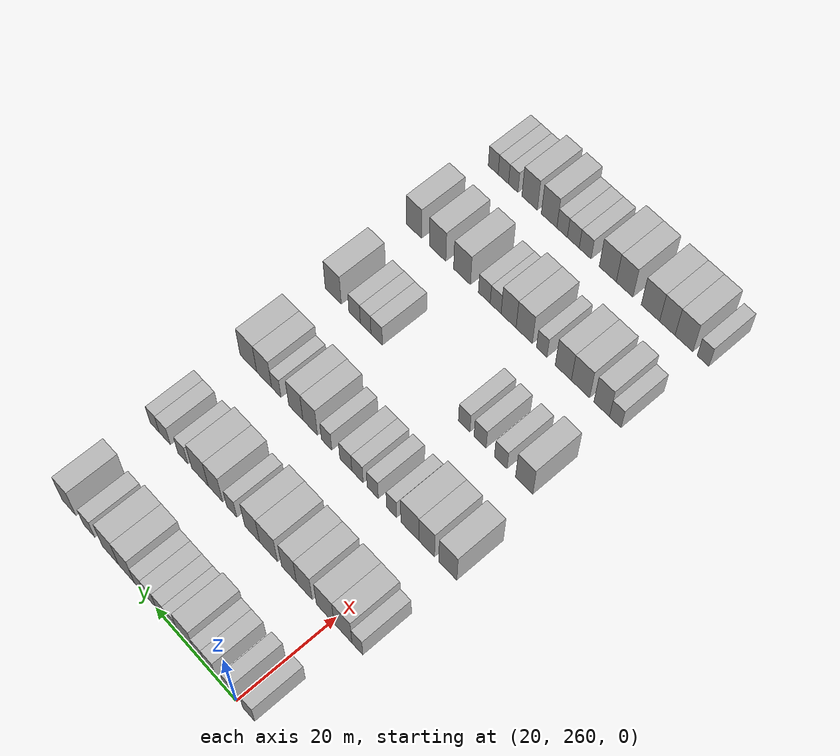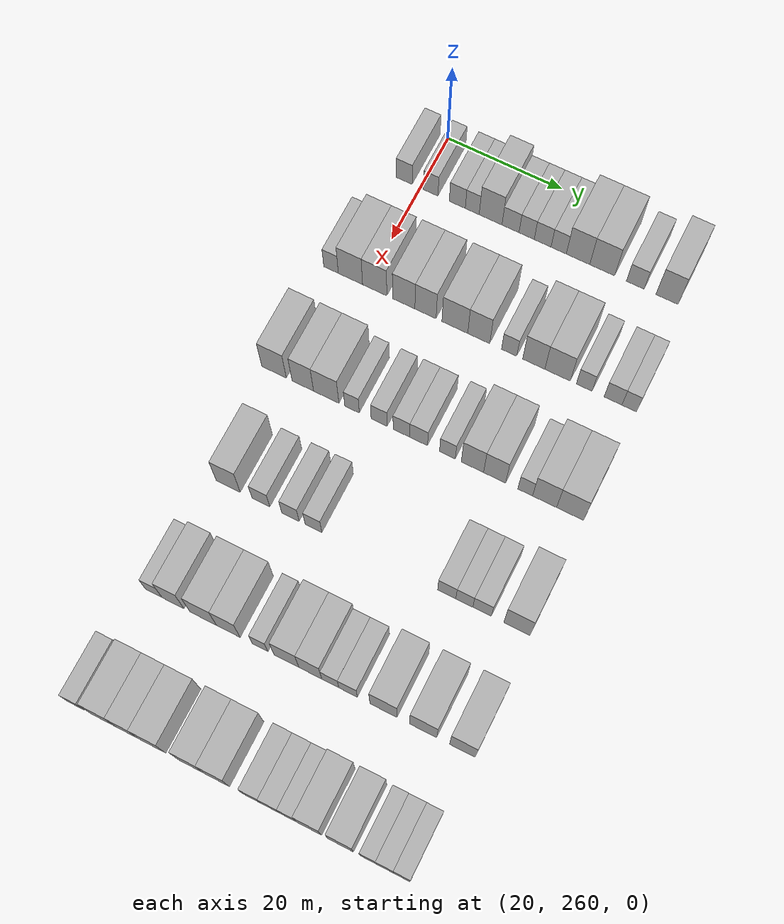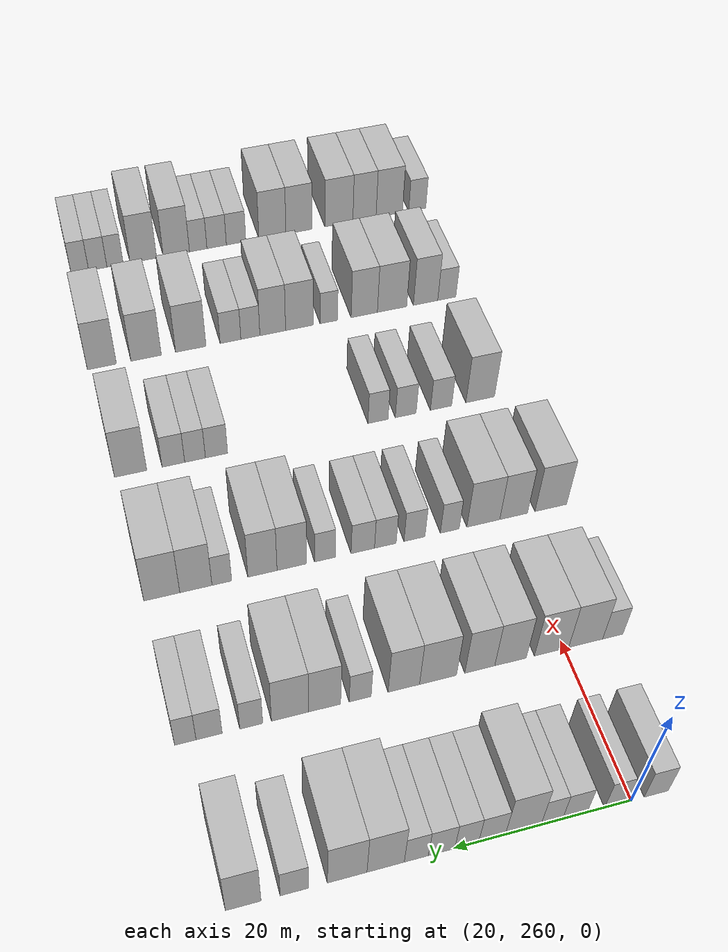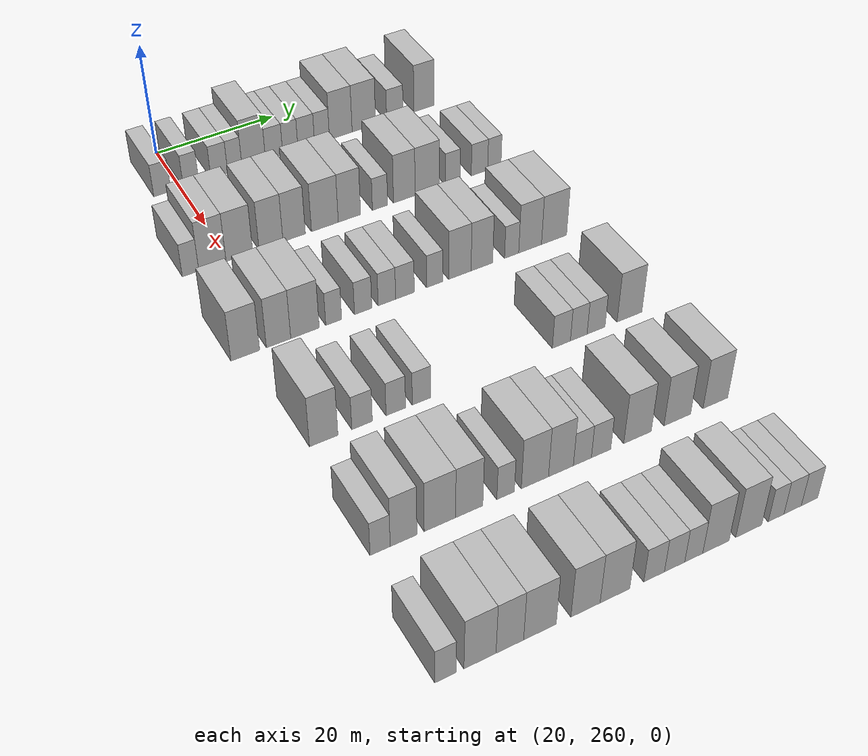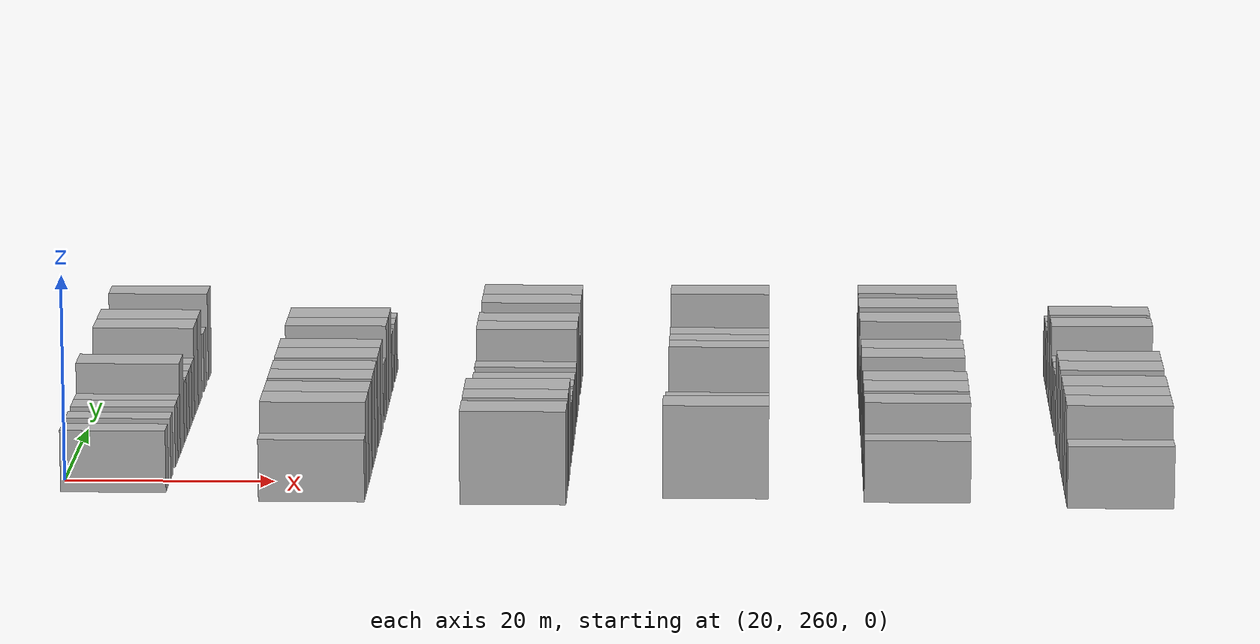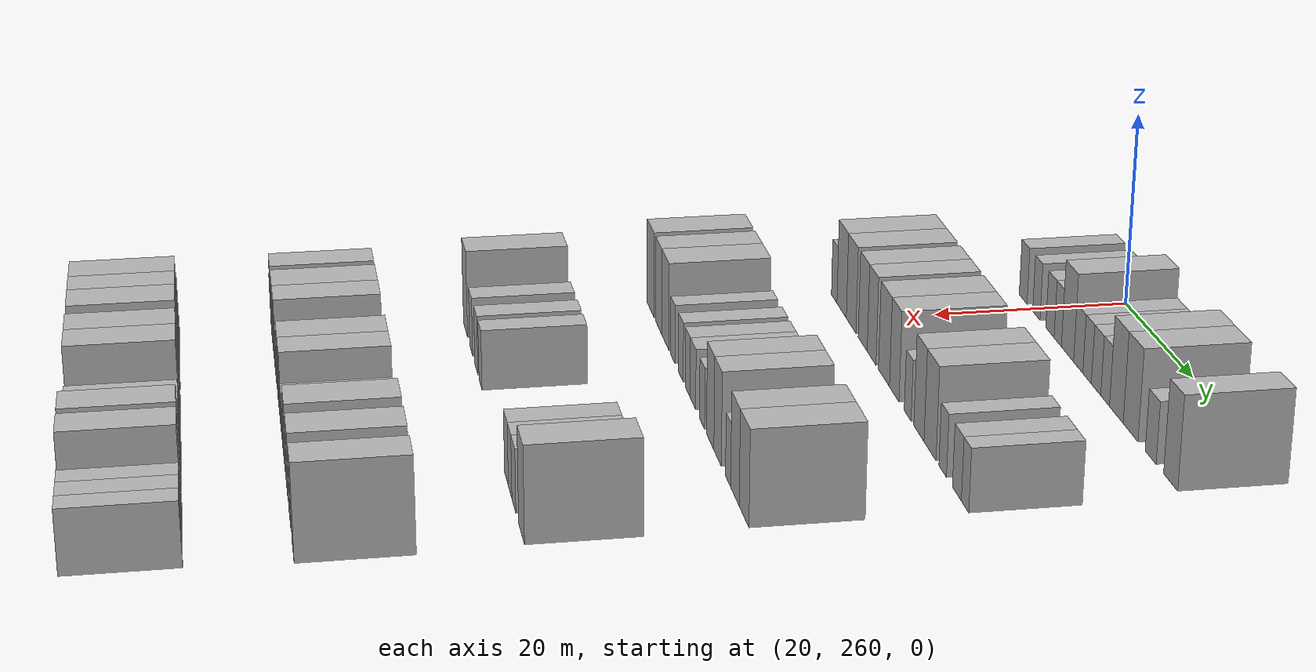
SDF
<sdf version="1.6">
 <world name="default">
  <model name="building_144">
   <static>1</static>
   <pose>25.0000 257.1010 0 0.000000 0.000000 0.000000</pose>
   <link name="link">
    <pose>0 0 3.00 0 0 0</pose>
    <collision name="collision"><geometry><box><size>10.0000 2.8048 6.0000</size></box></geometry></collision>
    <visual name="visual">
     <cast_shadows>0</cast_shadows>
     <geometry><box><size>10.0000 2.8048 6.0000</size></box></geometry>
     <material>
      <script>
       <uri>model://HANNAS_wall/materials/scripts</uri>
       <uri>model://HANNAS_wall/materials/textures</uri>
       <name>vrc/HANNAS_wall</name>
      </script>
     </material>
    </visual>
   </link>
  </model>
  <model name="building_145">
   <static>1</static>
   <pose>25.0000 261.7881 0 0.000000 0.000000 0.000000</pose>
   <link name="link">
    <pose>0 0 3.00 0 0 0</pose>
    <collision name="collision"><geometry><box><size>10.0000 2.5695 6.0000</size></box></geometry></collision>
    <visual name="visual">
     <cast_shadows>0</cast_shadows>
     <geometry><box><size>10.0000 2.5695 6.0000</size></box></geometry>
     <material>
      <script>
       <uri>model://HANNAS_wall/materials/scripts</uri>
       <uri>model://HANNAS_wall/materials/textures</uri>
       <name>vrc/HANNAS_wall</name>
      </script>
     </material>
    </visual>
   </link>
  </model>
  <model name="building_146">
   <static>1</static>
   <pose>25.0000 266.4781 0 0.000000 0.000000 0.000000</pose>
   <link name="link">
    <pose>0 0 3.00 0 0 0</pose>
    <collision name="collision"><geometry><box><size>10.0000 2.8106 6.0000</size></box></geometry></collision>
    <visual name="visual">
     <cast_shadows>0</cast_shadows>
     <geometry><box><size>10.0000 2.8106 6.0000</size></box></geometry>
     <material>
      <script>
       <uri>model://HANNAS_wall/materials/scripts</uri>
       <uri>model://HANNAS_wall/materials/textures</uri>
       <name>vrc/HANNAS_wall</name>
      </script>
     </material>
    </visual>
   </link>
  </model>
  <model name="building_147">
   <static>1</static>
   <pose>25.0000 269.1011 0 0.000000 0.000000 0.000000</pose>
   <link name="link">
    <pose>0 0 3.00 0 0 0</pose>
    <collision name="collision"><geometry><box><size>10.0000 2.4353 6.0000</size></box></geometry></collision>
    <visual name="visual">
     <cast_shadows>0</cast_shadows>
     <geometry><box><size>10.0000 2.4353 6.0000</size></box></geometry>
     <material>
      <script>
       <uri>model://HANNAS_wall/materials/scripts</uri>
       <uri>model://HANNAS_wall/materials/textures</uri>
       <name>vrc/HANNAS_wall</name>
      </script>
     </material>
    </visual>
   </link>
  </model>
  <model name="building_148">
   <static>1</static>
   <pose>25.0000 272.3155 0 0.000000 0.000000 0.000000</pose>
   <link name="link">
    <pose>0 0 4.50 0 0 0</pose>
    <collision name="collision"><geometry><box><size>10.0000 3.9936 9.0000</size></box></geometry></collision>
    <visual name="visual">
     <cast_shadows>0</cast_shadows>
     <geometry><box><size>10.0000 3.9936 9.0000</size></box></geometry>
     <material>
      <script>
       <uri>model://HANNAS_wall/materials/scripts</uri>
       <uri>model://HANNAS_wall/materials/textures</uri>
       <name>vrc/HANNAS_wall</name>
      </script>
     </material>
    </visual>
   </link>
  </model>
  <model name="building_149">
   <static>1</static>
   <pose>25.0000 275.7907 0 0.000000 0.000000 0.000000</pose>
   <link name="link">
    <pose>0 0 3.00 0 0 0</pose>
    <collision name="collision"><geometry><box><size>10.0000 2.9568 6.0000</size></box></geometry></collision>
    <visual name="visual">
     <cast_shadows>0</cast_shadows>
     <geometry><box><size>10.0000 2.9568 6.0000</size></box></geometry>
     <material>
      <script>
       <uri>model://HANNAS_wall/materials/scripts</uri>
       <uri>model://HANNAS_wall/materials/textures</uri>
       <name>vrc/HANNAS_wall</name>
      </script>
     </material>
    </visual>
   </link>
  </model>
  <model name="building_150">
   <static>1</static>
   <pose>25.0000 278.5906 0 0.000000 0.000000 0.000000</pose>
   <link name="link">
    <pose>0 0 3.00 0 0 0</pose>
    <collision name="collision"><geometry><box><size>10.0000 2.6431 6.0000</size></box></geometry></collision>
    <visual name="visual">
     <cast_shadows>0</cast_shadows>
     <geometry><box><size>10.0000 2.6431 6.0000</size></box></geometry>
     <material>
      <script>
       <uri>model://HANNAS_wall/materials/scripts</uri>
       <uri>model://HANNAS_wall/materials/textures</uri>
       <name>vrc/HANNAS_wall</name>
      </script>
     </material>
    </visual>
   </link>
  </model>
  <model name="building_151">
   <static>1</static>
   <pose>25.0000 281.3657 0 0.000000 0.000000 0.000000</pose>
   <link name="link">
    <pose>0 0 3.00 0 0 0</pose>
    <collision name="collision"><geometry><box><size>10.0000 2.9071 6.0000</size></box></geometry></collision>
    <visual name="visual">
     <cast_shadows>0</cast_shadows>
     <geometry><box><size>10.0000 2.9071 6.0000</size></box></geometry>
     <material>
      <script>
       <uri>model://HANNAS_wall/materials/scripts</uri>
       <uri>model://HANNAS_wall/materials/textures</uri>
       <name>vrc/HANNAS_wall</name>
      </script>
     </material>
    </visual>
   </link>
  </model>
  <model name="building_152">
   <static>1</static>
   <pose>25.0000 284.1300 0 0.000000 0.000000 0.000000</pose>
   <link name="link">
    <pose>0 0 3.00 0 0 0</pose>
    <collision name="collision"><geometry><box><size>10.0000 2.6216 6.0000</size></box></geometry></collision>
    <visual name="visual">
     <cast_shadows>0</cast_shadows>
     <geometry><box><size>10.0000 2.6216 6.0000</size></box></geometry>
     <material>
      <script>
       <uri>model://HANNAS_wall/materials/scripts</uri>
       <uri>model://HANNAS_wall/materials/textures</uri>
       <name>vrc/HANNAS_wall</name>
      </script>
     </material>
    </visual>
   </link>
  </model>
  <model name="building_153">
   <static>1</static>
   <pose>25.0000 287.4581 0 0.000000 0.000000 0.000000</pose>
   <link name="link">
    <pose>0 0 4.50 0 0 0</pose>
    <collision name="collision"><geometry><box><size>10.0000 4.0344 9.0000</size></box></geometry></collision>
    <visual name="visual">
     <cast_shadows>0</cast_shadows>
     <geometry><box><size>10.0000 4.0344 9.0000</size></box></geometry>
     <material>
      <script>
       <uri>model://HANNAS_wall/materials/scripts</uri>
       <uri>model://HANNAS_wall/materials/textures</uri>
       <name>vrc/HANNAS_wall</name>
      </script>
     </material>
    </visual>
   </link>
  </model>
  <model name="building_154">
   <static>1</static>
   <pose>25.0000 291.5958 0 0.000000 0.000000 0.000000</pose>
   <link name="link">
    <pose>0 0 4.50 0 0 0</pose>
    <collision name="collision"><geometry><box><size>10.0000 4.2411 9.0000</size></box></geometry></collision>
    <visual name="visual">
     <cast_shadows>0</cast_shadows>
     <geometry><box><size>10.0000 4.2411 9.0000</size></box></geometry>
     <material>
      <script>
       <uri>model://HANNAS_wall/materials/scripts</uri>
       <uri>model://HANNAS_wall/materials/textures</uri>
       <name>vrc/HANNAS_wall</name>
      </script>
     </material>
    </visual>
   </link>
  </model>
  <model name="building_155">
   <static>1</static>
   <pose>25.0000 297.2146 0 0.000000 0.000000 0.000000</pose>
   <link name="link">
    <pose>0 0 3.00 0 0 0</pose>
    <collision name="collision"><geometry><box><size>10.0000 2.9964 6.0000</size></box></geometry></collision>
    <visual name="visual">
     <cast_shadows>0</cast_shadows>
     <geometry><box><size>10.0000 2.9964 6.0000</size></box></geometry>
     <material>
      <script>
       <uri>model://HANNAS_wall/materials/scripts</uri>
       <uri>model://HANNAS_wall/materials/textures</uri>
       <name>vrc/HANNAS_wall</name>
      </script>
     </material>
    </visual>
   </link>
  </model>
  <model name="building_156">
   <static>1</static>
   <pose>25.0000 302.5729 0 0.000000 0.000000 0.000000</pose>
   <link name="link">
    <pose>0 0 4.50 0 0 0</pose>
    <collision name="collision"><geometry><box><size>10.0000 3.7202 9.0000</size></box></geometry></collision>
    <visual name="visual">
     <cast_shadows>0</cast_shadows>
     <geometry><box><size>10.0000 3.7202 9.0000</size></box></geometry>
     <material>
      <script>
       <uri>model://HANNAS_wall/materials/scripts</uri>
       <uri>model://HANNAS_wall/materials/textures</uri>
       <name>vrc/HANNAS_wall</name>
      </script>
     </material>
    </visual>
   </link>
  </model>
  <model name="building_307">
   <static>1</static>
   <pose>44.0000 253.9449 0 0.000000 0.000000 0.000000</pose>
   <link name="link">
    <pose>0 0 3.00 0 0 0</pose>
    <collision name="collision"><geometry><box><size>10.0000 2.5527 6.0000</size></box></geometry></collision>
    <visual name="visual">
     <cast_shadows>0</cast_shadows>
     <geometry><box><size>10.0000 2.5527 6.0000</size></box></geometry>
     <material>
      <script>
       <uri>model://HANNAS_wall/materials/scripts</uri>
       <uri>model://HANNAS_wall/materials/textures</uri>
       <name>vrc/HANNAS_wall</name>
      </script>
     </material>
    </visual>
   </link>
  </model>
  <model name="building_308">
   <static>1</static>
   <pose>44.0000 257.3402 0 0.000000 0.000000 0.000000</pose>
   <link name="link">
    <pose>0 0 4.50 0 0 0</pose>
    <collision name="collision"><geometry><box><size>10.0000 4.2379 9.0000</size></box></geometry></collision>
    <visual name="visual">
     <cast_shadows>0</cast_shadows>
     <geometry><box><size>10.0000 4.2379 9.0000</size></box></geometry>
     <material>
      <script>
       <uri>model://HANNAS_wall/materials/scripts</uri>
       <uri>model://HANNAS_wall/materials/textures</uri>
       <name>vrc/HANNAS_wall</name>
      </script>
     </material>
    </visual>
   </link>
  </model>
  <model name="building_309">
   <static>1</static>
   <pose>44.0000 261.5734 0 0.000000 0.000000 0.000000</pose>
   <link name="link">
    <pose>0 0 4.50 0 0 0</pose>
    <collision name="collision"><geometry><box><size>10.0000 4.2284 9.0000</size></box></geometry></collision>
    <visual name="visual">
     <cast_shadows>0</cast_shadows>
     <geometry><box><size>10.0000 4.2284 9.0000</size></box></geometry>
     <material>
      <script>
       <uri>model://HANNAS_wall/materials/scripts</uri>
       <uri>model://HANNAS_wall/materials/textures</uri>
       <name>vrc/HANNAS_wall</name>
      </script>
     </material>
    </visual>
   </link>
  </model>
  <model name="building_310">
   <static>1</static>
   <pose>44.0000 266.6108 0 0.000000 0.000000 0.000000</pose>
   <link name="link">
    <pose>0 0 4.50 0 0 0</pose>
    <collision name="collision"><geometry><box><size>10.0000 3.8464 9.0000</size></box></geometry></collision>
    <visual name="visual">
     <cast_shadows>0</cast_shadows>
     <geometry><box><size>10.0000 3.8464 9.0000</size></box></geometry>
     <material>
      <script>
       <uri>model://HANNAS_wall/materials/scripts</uri>
       <uri>model://HANNAS_wall/materials/textures</uri>
       <name>vrc/HANNAS_wall</name>
      </script>
     </material>
    </visual>
   </link>
  </model>
  <model name="building_311">
   <static>1</static>
   <pose>44.0000 270.3527 0 0.000000 0.000000 0.000000</pose>
   <link name="link">
    <pose>0 0 4.50 0 0 0</pose>
    <collision name="collision"><geometry><box><size>10.0000 3.6373 9.0000</size></box></geometry></collision>
    <visual name="visual">
     <cast_shadows>0</cast_shadows>
     <geometry><box><size>10.0000 3.6373 9.0000</size></box></geometry>
     <material>
      <script>
       <uri>model://HANNAS_wall/materials/scripts</uri>
       <uri>model://HANNAS_wall/materials/textures</uri>
       <name>vrc/HANNAS_wall</name>
      </script>
     </material>
    </visual>
   </link>
  </model>
  <model name="building_312">
   <static>1</static>
   <pose>44.0000 275.3841 0 0.000000 0.000000 0.000000</pose>
   <link name="link">
    <pose>0 0 4.50 0 0 0</pose>
    <collision name="collision"><geometry><box><size>10.0000 4.4255 9.0000</size></box></geometry></collision>
    <visual name="visual">
     <cast_shadows>0</cast_shadows>
     <geometry><box><size>10.0000 4.4255 9.0000</size></box></geometry>
     <material>
      <script>
       <uri>model://HANNAS_wall/materials/scripts</uri>
       <uri>model://HANNAS_wall/materials/textures</uri>
       <name>vrc/HANNAS_wall</name>
      </script>
     </material>
    </visual>
   </link>
  </model>
  <model name="building_313">
   <static>1</static>
   <pose>44.0000 279.4650 0 0.000000 0.000000 0.000000</pose>
   <link name="link">
    <pose>0 0 4.50 0 0 0</pose>
    <collision name="collision"><geometry><box><size>10.0000 3.7363 9.0000</size></box></geometry></collision>
    <visual name="visual">
     <cast_shadows>0</cast_shadows>
     <geometry><box><size>10.0000 3.7363 9.0000</size></box></geometry>
     <material>
      <script>
       <uri>model://HANNAS_wall/materials/scripts</uri>
       <uri>model://HANNAS_wall/materials/textures</uri>
       <name>vrc/HANNAS_wall</name>
      </script>
     </material>
    </visual>
   </link>
  </model>
  <model name="building_314">
   <static>1</static>
   <pose>44.0000 284.6228 0 0.000000 0.000000 0.000000</pose>
   <link name="link">
    <pose>0 0 3.00 0 0 0</pose>
    <collision name="collision"><geometry><box><size>10.0000 2.5793 6.0000</size></box></geometry></collision>
    <visual name="visual">
     <cast_shadows>0</cast_shadows>
     <geometry><box><size>10.0000 2.5793 6.0000</size></box></geometry>
     <material>
      <script>
       <uri>model://HANNAS_wall/materials/scripts</uri>
       <uri>model://HANNAS_wall/materials/textures</uri>
       <name>vrc/HANNAS_wall</name>
      </script>
     </material>
    </visual>
   </link>
  </model>
  <model name="building_315">
   <static>1</static>
   <pose>44.0000 288.7762 0 0.000000 0.000000 0.000000</pose>
   <link name="link">
    <pose>0 0 4.50 0 0 0</pose>
    <collision name="collision"><geometry><box><size>10.0000 3.7275 9.0000</size></box></geometry></collision>
    <visual name="visual">
     <cast_shadows>0</cast_shadows>
     <geometry><box><size>10.0000 3.7275 9.0000</size></box></geometry>
     <material>
      <script>
       <uri>model://HANNAS_wall/materials/scripts</uri>
       <uri>model://HANNAS_wall/materials/textures</uri>
       <name>vrc/HANNAS_wall</name>
      </script>
     </material>
    </visual>
   </link>
  </model>
  <model name="building_316">
   <static>1</static>
   <pose>44.0000 292.7743 0 0.000000 0.000000 0.000000</pose>
   <link name="link">
    <pose>0 0 4.50 0 0 0</pose>
    <collision name="collision"><geometry><box><size>10.0000 4.2688 9.0000</size></box></geometry></collision>
    <visual name="visual">
     <cast_shadows>0</cast_shadows>
     <geometry><box><size>10.0000 4.2688 9.0000</size></box></geometry>
     <material>
      <script>
       <uri>model://HANNAS_wall/materials/scripts</uri>
       <uri>model://HANNAS_wall/materials/textures</uri>
       <name>vrc/HANNAS_wall</name>
      </script>
     </material>
    </visual>
   </link>
  </model>
  <model name="building_317">
   <static>1</static>
   <pose>44.0000 297.2145 0 0.000000 0.000000 0.000000</pose>
   <link name="link">
    <pose>0 0 3.00 0 0 0</pose>
    <collision name="collision"><geometry><box><size>10.0000 2.6117 6.0000</size></box></geometry></collision>
    <visual name="visual">
     <cast_shadows>0</cast_shadows>
     <geometry><box><size>10.0000 2.6117 6.0000</size></box></geometry>
     <material>
      <script>
       <uri>model://HANNAS_wall/materials/scripts</uri>
       <uri>model://HANNAS_wall/materials/textures</uri>
       <name>vrc/HANNAS_wall</name>
      </script>
     </material>
    </visual>
   </link>
  </model>
  <model name="building_318">
   <static>1</static>
   <pose>44.0000 301.9924 0 0.000000 0.000000 0.000000</pose>
   <link name="link">
    <pose>0 0 3.00 0 0 0</pose>
    <collision name="collision"><geometry><box><size>10.0000 2.9440 6.0000</size></box></geometry></collision>
    <visual name="visual">
     <cast_shadows>0</cast_shadows>
     <geometry><box><size>10.0000 2.9440 6.0000</size></box></geometry>
     <material>
      <script>
       <uri>model://HANNAS_wall/materials/scripts</uri>
       <uri>model://HANNAS_wall/materials/textures</uri>
       <name>vrc/HANNAS_wall</name>
      </script>
     </material>
    </visual>
   </link>
  </model>
  <model name="building_319">
   <static>1</static>
   <pose>44.0000 304.6697 0 0.000000 0.000000 0.000000</pose>
   <link name="link">
    <pose>0 0 3.00 0 0 0</pose>
    <collision name="collision"><geometry><box><size>10.0000 2.4106 6.0000</size></box></geometry></collision>
    <visual name="visual">
     <cast_shadows>0</cast_shadows>
     <geometry><box><size>10.0000 2.4106 6.0000</size></box></geometry>
     <material>
      <script>
       <uri>model://HANNAS_wall/materials/scripts</uri>
       <uri>model://HANNAS_wall/materials/textures</uri>
       <name>vrc/HANNAS_wall</name>
      </script>
     </material>
    </visual>
   </link>
  </model>
  <model name="building_479">
   <static>1</static>
   <pose>63.0000 254.1440 0 0.000000 0.000000 0.000000</pose>
   <link name="link">
    <pose>0 0 4.50 0 0 0</pose>
    <collision name="collision"><geometry><box><size>10.0000 4.2396 9.0000</size></box></geometry></collision>
    <visual name="visual">
     <cast_shadows>0</cast_shadows>
     <geometry><box><size>10.0000 4.2396 9.0000</size></box></geometry>
     <material>
      <script>
       <uri>model://HANNAS_wall/materials/scripts</uri>
       <uri>model://HANNAS_wall/materials/textures</uri>
       <name>vrc/HANNAS_wall</name>
      </script>
     </material>
    </visual>
   </link>
  </model>
  <model name="building_480">
   <static>1</static>
   <pose>63.0000 259.0972 0 0.000000 0.000000 0.000000</pose>
   <link name="link">
    <pose>0 0 4.50 0 0 0</pose>
    <collision name="collision"><geometry><box><size>10.0000 3.6668 9.0000</size></box></geometry></collision>
    <visual name="visual">
     <cast_shadows>0</cast_shadows>
     <geometry><box><size>10.0000 3.6668 9.0000</size></box></geometry>
     <material>
      <script>
       <uri>model://HANNAS_wall/materials/scripts</uri>
       <uri>model://HANNAS_wall/materials/textures</uri>
       <name>vrc/HANNAS_wall</name>
      </script>
     </material>
    </visual>
   </link>
  </model>
  <model name="building_481">
   <static>1</static>
   <pose>63.0000 263.0956 0 0.000000 0.000000 0.000000</pose>
   <link name="link">
    <pose>0 0 4.50 0 0 0</pose>
    <collision name="collision"><geometry><box><size>10.0000 4.3301 9.0000</size></box></geometry></collision>
    <visual name="visual">
     <cast_shadows>0</cast_shadows>
     <geometry><box><size>10.0000 4.3301 9.0000</size></box></geometry>
     <material>
      <script>
       <uri>model://HANNAS_wall/materials/scripts</uri>
       <uri>model://HANNAS_wall/materials/textures</uri>
       <name>vrc/HANNAS_wall</name>
      </script>
     </material>
    </visual>
   </link>
  </model>
  <model name="building_482">
   <static>1</static>
   <pose>63.0000 267.4902 0 0.000000 0.000000 0.000000</pose>
   <link name="link">
    <pose>0 0 3.00 0 0 0</pose>
    <collision name="collision"><geometry><box><size>10.0000 2.4590 6.0000</size></box></geometry></collision>
    <visual name="visual">
     <cast_shadows>0</cast_shadows>
     <geometry><box><size>10.0000 2.4590 6.0000</size></box></geometry>
     <material>
      <script>
       <uri>model://HANNAS_wall/materials/scripts</uri>
       <uri>model://HANNAS_wall/materials/textures</uri>
       <name>vrc/HANNAS_wall</name>
      </script>
     </material>
    </visual>
   </link>
  </model>
  <model name="building_483">
   <static>1</static>
   <pose>63.0000 272.0754 0 0.000000 0.000000 0.000000</pose>
   <link name="link">
    <pose>0 0 3.00 0 0 0</pose>
    <collision name="collision"><geometry><box><size>10.0000 2.7114 6.0000</size></box></geometry></collision>
    <visual name="visual">
     <cast_shadows>0</cast_shadows>
     <geometry><box><size>10.0000 2.7114 6.0000</size></box></geometry>
     <material>
      <script>
       <uri>model://HANNAS_wall/materials/scripts</uri>
       <uri>model://HANNAS_wall/materials/textures</uri>
       <name>vrc/HANNAS_wall</name>
      </script>
     </material>
    </visual>
   </link>
  </model>
  <model name="building_484">
   <static>1</static>
   <pose>63.0000 275.8181 0 0.000000 0.000000 0.000000</pose>
   <link name="link">
    <pose>0 0 3.00 0 0 0</pose>
    <collision name="collision"><geometry><box><size>10.0000 2.7741 6.0000</size></box></geometry></collision>
    <visual name="visual">
     <cast_shadows>0</cast_shadows>
     <geometry><box><size>10.0000 2.7741 6.0000</size></box></geometry>
     <material>
      <script>
       <uri>model://HANNAS_wall/materials/scripts</uri>
       <uri>model://HANNAS_wall/materials/textures</uri>
       <name>vrc/HANNAS_wall</name>
      </script>
     </material>
    </visual>
   </link>
  </model>
  <model name="building_485">
   <static>1</static>
   <pose>63.0000 278.6989 0 0.000000 0.000000 0.000000</pose>
   <link name="link">
    <pose>0 0 3.00 0 0 0</pose>
    <collision name="collision"><geometry><box><size>10.0000 2.9874 6.0000</size></box></geometry></collision>
    <visual name="visual">
     <cast_shadows>0</cast_shadows>
     <geometry><box><size>10.0000 2.9874 6.0000</size></box></geometry>
     <material>
      <script>
       <uri>model://HANNAS_wall/materials/scripts</uri>
       <uri>model://HANNAS_wall/materials/textures</uri>
       <name>vrc/HANNAS_wall</name>
      </script>
     </material>
    </visual>
   </link>
  </model>
  <model name="building_486">
   <static>1</static>
   <pose>63.0000 283.4981 0 0.000000 0.000000 0.000000</pose>
   <link name="link">
    <pose>0 0 3.00 0 0 0</pose>
    <collision name="collision"><geometry><box><size>10.0000 2.6109 6.0000</size></box></geometry></collision>
    <visual name="visual">
     <cast_shadows>0</cast_shadows>
     <geometry><box><size>10.0000 2.6109 6.0000</size></box></geometry>
     <material>
      <script>
       <uri>model://HANNAS_wall/materials/scripts</uri>
       <uri>model://HANNAS_wall/materials/textures</uri>
       <name>vrc/HANNAS_wall</name>
      </script>
     </material>
    </visual>
   </link>
  </model>
  <model name="building_487">
   <static>1</static>
   <pose>63.0000 287.6475 0 0.000000 0.000000 0.000000</pose>
   <link name="link">
    <pose>0 0 4.50 0 0 0</pose>
    <collision name="collision"><geometry><box><size>10.0000 3.6880 9.0000</size></box></geometry></collision>
    <visual name="visual">
     <cast_shadows>0</cast_shadows>
     <geometry><box><size>10.0000 3.6880 9.0000</size></box></geometry>
     <material>
      <script>
       <uri>model://HANNAS_wall/materials/scripts</uri>
       <uri>model://HANNAS_wall/materials/textures</uri>
       <name>vrc/HANNAS_wall</name>
      </script>
     </material>
    </visual>
   </link>
  </model>
  <model name="building_488">
   <static>1</static>
   <pose>63.0000 291.3024 0 0.000000 0.000000 0.000000</pose>
   <link name="link">
    <pose>0 0 4.50 0 0 0</pose>
    <collision name="collision"><geometry><box><size>10.0000 3.6217 9.0000</size></box></geometry></collision>
    <visual name="visual">
     <cast_shadows>0</cast_shadows>
     <geometry><box><size>10.0000 3.6217 9.0000</size></box></geometry>
     <material>
      <script>
       <uri>model://HANNAS_wall/materials/scripts</uri>
       <uri>model://HANNAS_wall/materials/textures</uri>
       <name>vrc/HANNAS_wall</name>
      </script>
     </material>
    </visual>
   </link>
  </model>
  <model name="building_489">
   <static>1</static>
   <pose>63.0000 296.3195 0 0.000000 0.000000 0.000000</pose>
   <link name="link">
    <pose>0 0 3.00 0 0 0</pose>
    <collision name="collision"><geometry><box><size>10.0000 2.4126 6.0000</size></box></geometry></collision>
    <visual name="visual">
     <cast_shadows>0</cast_shadows>
     <geometry><box><size>10.0000 2.4126 6.0000</size></box></geometry>
     <material>
      <script>
       <uri>model://HANNAS_wall/materials/scripts</uri>
       <uri>model://HANNAS_wall/materials/textures</uri>
       <name>vrc/HANNAS_wall</name>
      </script>
     </material>
    </visual>
   </link>
  </model>
  <model name="building_490">
   <static>1</static>
   <pose>63.0000 299.4862 0 0.000000 0.000000 0.000000</pose>
   <link name="link">
    <pose>0 0 4.50 0 0 0</pose>
    <collision name="collision"><geometry><box><size>10.0000 3.9207 9.0000</size></box></geometry></collision>
    <visual name="visual">
     <cast_shadows>0</cast_shadows>
     <geometry><box><size>10.0000 3.9207 9.0000</size></box></geometry>
     <material>
      <script>
       <uri>model://HANNAS_wall/materials/scripts</uri>
       <uri>model://HANNAS_wall/materials/textures</uri>
       <name>vrc/HANNAS_wall</name>
      </script>
     </material>
    </visual>
   </link>
  </model>
  <model name="building_491">
   <static>1</static>
   <pose>63.0000 303.6289 0 0.000000 0.000000 0.000000</pose>
   <link name="link">
    <pose>0 0 4.50 0 0 0</pose>
    <collision name="collision"><geometry><box><size>10.0000 4.3647 9.0000</size></box></geometry></collision>
    <visual name="visual">
     <cast_shadows>0</cast_shadows>
     <geometry><box><size>10.0000 4.3647 9.0000</size></box></geometry>
     <material>
      <script>
       <uri>model://HANNAS_wall/materials/scripts</uri>
       <uri>model://HANNAS_wall/materials/textures</uri>
       <name>vrc/HANNAS_wall</name>
      </script>
     </material>
    </visual>
   </link>
  </model>
  <model name="building_656">
   <static>1</static>
   <pose>82.0000 256.7174 0 0.000000 0.000000 0.000000</pose>
   <link name="link">
    <pose>0 0 4.50 0 0 0</pose>
    <collision name="collision"><geometry><box><size>10.0000 4.0508 9.0000</size></box></geometry></collision>
    <visual name="visual">
     <cast_shadows>0</cast_shadows>
     <geometry><box><size>10.0000 4.0508 9.0000</size></box></geometry>
     <material>
      <script>
       <uri>model://HANNAS_wall/materials/scripts</uri>
       <uri>model://HANNAS_wall/materials/textures</uri>
       <name>vrc/HANNAS_wall</name>
      </script>
     </material>
    </visual>
   </link>
  </model>
  <model name="building_657">
   <static>1</static>
   <pose>82.0000 262.2316 0 0.000000 0.000000 0.000000</pose>
   <link name="link">
    <pose>0 0 3.00 0 0 0</pose>
    <collision name="collision"><geometry><box><size>10.0000 2.9776 6.0000</size></box></geometry></collision>
    <visual name="visual">
     <cast_shadows>0</cast_shadows>
     <geometry><box><size>10.0000 2.9776 6.0000</size></box></geometry>
     <material>
      <script>
       <uri>model://HANNAS_wall/materials/scripts</uri>
       <uri>model://HANNAS_wall/materials/textures</uri>
       <name>vrc/HANNAS_wall</name>
      </script>
     </material>
    </visual>
   </link>
  </model>
  <model name="building_658">
   <static>1</static>
   <pose>82.0000 267.1630 0 0.000000 0.000000 0.000000</pose>
   <link name="link">
    <pose>0 0 3.00 0 0 0</pose>
    <collision name="collision"><geometry><box><size>10.0000 2.8853 6.0000</size></box></geometry></collision>
    <visual name="visual">
     <cast_shadows>0</cast_shadows>
     <geometry><box><size>10.0000 2.8853 6.0000</size></box></geometry>
     <material>
      <script>
       <uri>model://HANNAS_wall/materials/scripts</uri>
       <uri>model://HANNAS_wall/materials/textures</uri>
       <name>vrc/HANNAS_wall</name>
      </script>
     </material>
    </visual>
   </link>
  </model>
  <model name="building_659">
   <static>1</static>
   <pose>82.0000 270.9936 0 0.000000 0.000000 0.000000</pose>
   <link name="link">
    <pose>0 0 3.00 0 0 0</pose>
    <collision name="collision"><geometry><box><size>10.0000 2.7759 6.0000</size></box></geometry></collision>
    <visual name="visual">
     <cast_shadows>0</cast_shadows>
     <geometry><box><size>10.0000 2.7759 6.0000</size></box></geometry>
     <material>
      <script>
       <uri>model://HANNAS_wall/materials/scripts</uri>
       <uri>model://HANNAS_wall/materials/textures</uri>
       <name>vrc/HANNAS_wall</name>
      </script>
     </material>
    </visual>
   </link>
  </model>
  <model name="building_660">
   <static>1</static>
   <pose>82.0000 292.7752 0 0.000000 0.000000 0.000000</pose>
   <link name="link">
    <pose>0 0 3.00 0 0 0</pose>
    <collision name="collision"><geometry><box><size>10.0000 2.9291 6.0000</size></box></geometry></collision>
    <visual name="visual">
     <cast_shadows>0</cast_shadows>
     <geometry><box><size>10.0000 2.9291 6.0000</size></box></geometry>
     <material>
      <script>
       <uri>model://HANNAS_wall/materials/scripts</uri>
       <uri>model://HANNAS_wall/materials/textures</uri>
       <name>vrc/HANNAS_wall</name>
      </script>
     </material>
    </visual>
   </link>
  </model>
  <model name="building_661">
   <static>1</static>
   <pose>82.0000 295.6012 0 0.000000 0.000000 0.000000</pose>
   <link name="link">
    <pose>0 0 3.00 0 0 0</pose>
    <collision name="collision"><geometry><box><size>10.0000 2.7230 6.0000</size></box></geometry></collision>
    <visual name="visual">
     <cast_shadows>0</cast_shadows>
     <geometry><box><size>10.0000 2.7230 6.0000</size></box></geometry>
     <material>
      <script>
       <uri>model://HANNAS_wall/materials/scripts</uri>
       <uri>model://HANNAS_wall/materials/textures</uri>
       <name>vrc/HANNAS_wall</name>
      </script>
     </material>
    </visual>
   </link>
  </model>
  <model name="building_662">
   <static>1</static>
   <pose>82.0000 298.4414 0 0.000000 0.000000 0.000000</pose>
   <link name="link">
    <pose>0 0 3.00 0 0 0</pose>
    <collision name="collision"><geometry><box><size>10.0000 2.9574 6.0000</size></box></geometry></collision>
    <visual name="visual">
     <cast_shadows>0</cast_shadows>
     <geometry><box><size>10.0000 2.9574 6.0000</size></box></geometry>
     <material>
      <script>
       <uri>model://HANNAS_wall/materials/scripts</uri>
       <uri>model://HANNAS_wall/materials/textures</uri>
       <name>vrc/HANNAS_wall</name>
      </script>
     </material>
    </visual>
   </link>
  </model>
  <model name="building_663">
   <static>1</static>
   <pose>82.0000 304.0082 0 0.000000 0.000000 0.000000</pose>
   <link name="link">
    <pose>0 0 4.50 0 0 0</pose>
    <collision name="collision"><geometry><box><size>10.0000 4.1764 9.0000</size></box></geometry></collision>
    <visual name="visual">
     <cast_shadows>0</cast_shadows>
     <geometry><box><size>10.0000 4.1764 9.0000</size></box></geometry>
     <material>
      <script>
       <uri>model://HANNAS_wall/materials/scripts</uri>
       <uri>model://HANNAS_wall/materials/textures</uri>
       <name>vrc/HANNAS_wall</name>
      </script>
     </material>
    </visual>
   </link>
  </model>
  <model name="building_825">
   <static>1</static>
   <pose>101.0000 254.9655 0 0.000000 0.000000 0.000000</pose>
   <link name="link">
    <pose>0 0 3.00 0 0 0</pose>
    <collision name="collision"><geometry><box><size>10.0000 2.7145 6.0000</size></box></geometry></collision>
    <visual name="visual">
     <cast_shadows>0</cast_shadows>
     <geometry><box><size>10.0000 2.7145 6.0000</size></box></geometry>
     <material>
      <script>
       <uri>model://HANNAS_wall/materials/scripts</uri>
       <uri>model://HANNAS_wall/materials/textures</uri>
       <name>vrc/HANNAS_wall</name>
      </script>
     </material>
    </visual>
   </link>
  </model>
  <model name="building_826">
   <static>1</static>
   <pose>101.0000 258.1478 0 0.000000 0.000000 0.000000</pose>
   <link name="link">
    <pose>0 0 4.50 0 0 0</pose>
    <collision name="collision"><geometry><box><size>10.0000 3.6500 9.0000</size></box></geometry></collision>
    <visual name="visual">
     <cast_shadows>0</cast_shadows>
     <geometry><box><size>10.0000 3.6500 9.0000</size></box></geometry>
     <material>
      <script>
       <uri>model://HANNAS_wall/materials/scripts</uri>
       <uri>model://HANNAS_wall/materials/textures</uri>
       <name>vrc/HANNAS_wall</name>
      </script>
     </material>
    </visual>
   </link>
  </model>
  <model name="building_827">
   <static>1</static>
   <pose>101.0000 263.1438 0 0.000000 0.000000 0.000000</pose>
   <link name="link">
    <pose>0 0 4.50 0 0 0</pose>
    <collision name="collision"><geometry><box><size>10.0000 4.3420 9.0000</size></box></geometry></collision>
    <visual name="visual">
     <cast_shadows>0</cast_shadows>
     <geometry><box><size>10.0000 4.3420 9.0000</size></box></geometry>
     <material>
      <script>
       <uri>model://HANNAS_wall/materials/scripts</uri>
       <uri>model://HANNAS_wall/materials/textures</uri>
       <name>vrc/HANNAS_wall</name>
      </script>
     </material>
    </visual>
   </link>
  </model>
  <model name="building_828">
   <static>1</static>
   <pose>101.0000 267.2515 0 0.000000 0.000000 0.000000</pose>
   <link name="link">
    <pose>0 0 4.50 0 0 0</pose>
    <collision name="collision"><geometry><box><size>10.0000 3.8735 9.0000</size></box></geometry></collision>
    <visual name="visual">
     <cast_shadows>0</cast_shadows>
     <geometry><box><size>10.0000 3.8735 9.0000</size></box></geometry>
     <material>
      <script>
       <uri>model://HANNAS_wall/materials/scripts</uri>
       <uri>model://HANNAS_wall/materials/textures</uri>
       <name>vrc/HANNAS_wall</name>
      </script>
     </material>
    </visual>
   </link>
  </model>
  <model name="building_829">
   <static>1</static>
   <pose>101.0000 272.4550 0 0.000000 0.000000 0.000000</pose>
   <link name="link">
    <pose>0 0 3.00 0 0 0</pose>
    <collision name="collision"><geometry><box><size>10.0000 2.5334 6.0000</size></box></geometry></collision>
    <visual name="visual">
     <cast_shadows>0</cast_shadows>
     <geometry><box><size>10.0000 2.5334 6.0000</size></box></geometry>
     <material>
      <script>
       <uri>model://HANNAS_wall/materials/scripts</uri>
       <uri>model://HANNAS_wall/materials/textures</uri>
       <name>vrc/HANNAS_wall</name>
      </script>
     </material>
    </visual>
   </link>
  </model>
  <model name="building_830">
   <static>1</static>
   <pose>101.0000 276.7208 0 0.000000 0.000000 0.000000</pose>
   <link name="link">
    <pose>0 0 4.50 0 0 0</pose>
    <collision name="collision"><geometry><box><size>10.0000 3.9981 9.0000</size></box></geometry></collision>
    <visual name="visual">
     <cast_shadows>0</cast_shadows>
     <geometry><box><size>10.0000 3.9981 9.0000</size></box></geometry>
     <material>
      <script>
       <uri>model://HANNAS_wall/materials/scripts</uri>
       <uri>model://HANNAS_wall/materials/textures</uri>
       <name>vrc/HANNAS_wall</name>
      </script>
     </material>
    </visual>
   </link>
  </model>
  <model name="building_831">
   <static>1</static>
   <pose>101.0000 280.5689 0 0.000000 0.000000 0.000000</pose>
   <link name="link">
    <pose>0 0 4.50 0 0 0</pose>
    <collision name="collision"><geometry><box><size>10.0000 3.6981 9.0000</size></box></geometry></collision>
    <visual name="visual">
     <cast_shadows>0</cast_shadows>
     <geometry><box><size>10.0000 3.6981 9.0000</size></box></geometry>
     <material>
      <script>
       <uri>model://HANNAS_wall/materials/scripts</uri>
       <uri>model://HANNAS_wall/materials/textures</uri>
       <name>vrc/HANNAS_wall</name>
      </script>
     </material>
    </visual>
   </link>
  </model>
  <model name="building_832">
   <static>1</static>
   <pose>101.0000 283.7741 0 0.000000 0.000000 0.000000</pose>
   <link name="link">
    <pose>0 0 3.00 0 0 0</pose>
    <collision name="collision"><geometry><box><size>10.0000 2.7123 6.0000</size></box></geometry></collision>
    <visual name="visual">
     <cast_shadows>0</cast_shadows>
     <geometry><box><size>10.0000 2.7123 6.0000</size></box></geometry>
     <material>
      <script>
       <uri>model://HANNAS_wall/materials/scripts</uri>
       <uri>model://HANNAS_wall/materials/textures</uri>
       <name>vrc/HANNAS_wall</name>
      </script>
     </material>
    </visual>
   </link>
  </model>
  <model name="building_833">
   <static>1</static>
   <pose>101.0000 286.6051 0 0.000000 0.000000 0.000000</pose>
   <link name="link">
    <pose>0 0 3.00 0 0 0</pose>
    <collision name="collision"><geometry><box><size>10.0000 2.9495 6.0000</size></box></geometry></collision>
    <visual name="visual">
     <cast_shadows>0</cast_shadows>
     <geometry><box><size>10.0000 2.9495 6.0000</size></box></geometry>
     <material>
      <script>
       <uri>model://HANNAS_wall/materials/scripts</uri>
       <uri>model://HANNAS_wall/materials/textures</uri>
       <name>vrc/HANNAS_wall</name>
      </script>
     </material>
    </visual>
   </link>
  </model>
  <model name="building_834">
   <static>1</static>
   <pose>101.0000 292.2188 0 0.000000 0.000000 0.000000</pose>
   <link name="link">
    <pose>0 0 4.50 0 0 0</pose>
    <collision name="collision"><geometry><box><size>10.0000 4.2780 9.0000</size></box></geometry></collision>
    <visual name="visual">
     <cast_shadows>0</cast_shadows>
     <geometry><box><size>10.0000 4.2780 9.0000</size></box></geometry>
     <material>
      <script>
       <uri>model://HANNAS_wall/materials/scripts</uri>
       <uri>model://HANNAS_wall/materials/textures</uri>
       <name>vrc/HANNAS_wall</name>
      </script>
     </material>
    </visual>
   </link>
  </model>
  <model name="building_835">
   <static>1</static>
   <pose>101.0000 298.4727 0 0.000000 0.000000 0.000000</pose>
   <link name="link">
    <pose>0 0 4.50 0 0 0</pose>
    <collision name="collision"><geometry><box><size>10.0000 4.2298 9.0000</size></box></geometry></collision>
    <visual name="visual">
     <cast_shadows>0</cast_shadows>
     <geometry><box><size>10.0000 4.2298 9.0000</size></box></geometry>
     <material>
      <script>
       <uri>model://HANNAS_wall/materials/scripts</uri>
       <uri>model://HANNAS_wall/materials/textures</uri>
       <name>vrc/HANNAS_wall</name>
      </script>
     </material>
    </visual>
   </link>
  </model>
  <model name="building_836">
   <static>1</static>
   <pose>101.0000 304.5917 0 0.000000 0.000000 0.000000</pose>
   <link name="link">
    <pose>0 0 4.50 0 0 0</pose>
    <collision name="collision"><geometry><box><size>10.0000 4.0081 9.0000</size></box></geometry></collision>
    <visual name="visual">
     <cast_shadows>0</cast_shadows>
     <geometry><box><size>10.0000 4.0081 9.0000</size></box></geometry>
     <material>
      <script>
       <uri>model://HANNAS_wall/materials/scripts</uri>
       <uri>model://HANNAS_wall/materials/textures</uri>
       <name>vrc/HANNAS_wall</name>
      </script>
     </material>
    </visual>
   </link>
  </model>
  <model name="building_993">
   <static>1</static>
   <pose>120.0000 253.2473 0 0.000000 0.000000 0.000000</pose>
   <link name="link">
    <pose>0 0 3.00 0 0 0</pose>
    <collision name="collision"><geometry><box><size>10.0000 2.7165 6.0000</size></box></geometry></collision>
    <visual name="visual">
     <cast_shadows>0</cast_shadows>
     <geometry><box><size>10.0000 2.7165 6.0000</size></box></geometry>
     <material>
      <script>
       <uri>model://HANNAS_wall/materials/scripts</uri>
       <uri>model://HANNAS_wall/materials/textures</uri>
       <name>vrc/HANNAS_wall</name>
      </script>
     </material>
    </visual>
   </link>
  </model>
  <model name="building_994">
   <static>1</static>
   <pose>120.0000 257.6915 0 0.000000 0.000000 0.000000</pose>
   <link name="link">
    <pose>0 0 4.50 0 0 0</pose>
    <collision name="collision"><geometry><box><size>10.0000 4.1719 9.0000</size></box></geometry></collision>
    <visual name="visual">
     <cast_shadows>0</cast_shadows>
     <geometry><box><size>10.0000 4.1719 9.0000</size></box></geometry>
     <material>
      <script>
       <uri>model://HANNAS_wall/materials/scripts</uri>
       <uri>model://HANNAS_wall/materials/textures</uri>
       <name>vrc/HANNAS_wall</name>
      </script>
     </material>
    </visual>
   </link>
  </model>
  <model name="building_995">
   <static>1</static>
   <pose>120.0000 261.5983 0 0.000000 0.000000 0.000000</pose>
   <link name="link">
    <pose>0 0 4.50 0 0 0</pose>
    <collision name="collision"><geometry><box><size>10.0000 3.6417 9.0000</size></box></geometry></collision>
    <visual name="visual">
     <cast_shadows>0</cast_shadows>
     <geometry><box><size>10.0000 3.6417 9.0000</size></box></geometry>
     <material>
      <script>
       <uri>model://HANNAS_wall/materials/scripts</uri>
       <uri>model://HANNAS_wall/materials/textures</uri>
       <name>vrc/HANNAS_wall</name>
      </script>
     </material>
    </visual>
   </link>
  </model>
  <model name="building_996">
   <static>1</static>
   <pose>120.0000 265.6032 0 0.000000 0.000000 0.000000</pose>
   <link name="link">
    <pose>0 0 4.50 0 0 0</pose>
    <collision name="collision"><geometry><box><size>10.0000 4.3681 9.0000</size></box></geometry></collision>
    <visual name="visual">
     <cast_shadows>0</cast_shadows>
     <geometry><box><size>10.0000 4.3681 9.0000</size></box></geometry>
     <material>
      <script>
       <uri>model://HANNAS_wall/materials/scripts</uri>
       <uri>model://HANNAS_wall/materials/textures</uri>
       <name>vrc/HANNAS_wall</name>
      </script>
     </material>
    </visual>
   </link>
  </model>
  <model name="building_997">
   <static>1</static>
   <pose>120.0000 271.7985 0 0.000000 0.000000 0.000000</pose>
   <link name="link">
    <pose>0 0 4.50 0 0 0</pose>
    <collision name="collision"><geometry><box><size>10.0000 4.0225 9.0000</size></box></geometry></collision>
    <visual name="visual">
     <cast_shadows>0</cast_shadows>
     <geometry><box><size>10.0000 4.0225 9.0000</size></box></geometry>
     <material>
      <script>
       <uri>model://HANNAS_wall/materials/scripts</uri>
       <uri>model://HANNAS_wall/materials/textures</uri>
       <name>vrc/HANNAS_wall</name>
      </script>
     </material>
    </visual>
   </link>
  </model>
  <model name="building_998">
   <static>1</static>
   <pose>120.0000 275.8818 0 0.000000 0.000000 0.000000</pose>
   <link name="link">
    <pose>0 0 4.50 0 0 0</pose>
    <collision name="collision"><geometry><box><size>10.0000 4.1442 9.0000</size></box></geometry></collision>
    <visual name="visual">
     <cast_shadows>0</cast_shadows>
     <geometry><box><size>10.0000 4.1442 9.0000</size></box></geometry>
     <material>
      <script>
       <uri>model://HANNAS_wall/materials/scripts</uri>
       <uri>model://HANNAS_wall/materials/textures</uri>
       <name>vrc/HANNAS_wall</name>
      </script>
     </material>
    </visual>
   </link>
  </model>
  <model name="building_999">
   <static>1</static>
   <pose>120.0000 281.4309 0 0.000000 0.000000 0.000000</pose>
   <link name="link">
    <pose>0 0 3.00 0 0 0</pose>
    <collision name="collision"><geometry><box><size>10.0000 2.9540 6.0000</size></box></geometry></collision>
    <visual name="visual">
     <cast_shadows>0</cast_shadows>
     <geometry><box><size>10.0000 2.9540 6.0000</size></box></geometry>
     <material>
      <script>
       <uri>model://HANNAS_wall/materials/scripts</uri>
       <uri>model://HANNAS_wall/materials/textures</uri>
       <name>vrc/HANNAS_wall</name>
      </script>
     </material>
    </visual>
   </link>
  </model>
  <model name="building_1000">
   <static>1</static>
   <pose>120.0000 284.3772 0 0.000000 0.000000 0.000000</pose>
   <link name="link">
    <pose>0 0 3.00 0 0 0</pose>
    <collision name="collision"><geometry><box><size>10.0000 2.9386 6.0000</size></box></geometry></collision>
    <visual name="visual">
     <cast_shadows>0</cast_shadows>
     <geometry><box><size>10.0000 2.9386 6.0000</size></box></geometry>
     <material>
      <script>
       <uri>model://HANNAS_wall/materials/scripts</uri>
       <uri>model://HANNAS_wall/materials/textures</uri>
       <name>vrc/HANNAS_wall</name>
      </script>
     </material>
    </visual>
   </link>
  </model>
  <model name="building_1001">
   <static>1</static>
   <pose>120.0000 287.1591 0 0.000000 0.000000 0.000000</pose>
   <link name="link">
    <pose>0 0 3.00 0 0 0</pose>
    <collision name="collision"><geometry><box><size>10.0000 2.6252 6.0000</size></box></geometry></collision>
    <visual name="visual">
     <cast_shadows>0</cast_shadows>
     <geometry><box><size>10.0000 2.6252 6.0000</size></box></geometry>
     <material>
      <script>
       <uri>model://HANNAS_wall/materials/scripts</uri>
       <uri>model://HANNAS_wall/materials/textures</uri>
       <name>vrc/HANNAS_wall</name>
      </script>
     </material>
    </visual>
   </link>
  </model>
  <model name="building_1002">
   <static>1</static>
   <pose>120.0000 290.4307 0 0.000000 0.000000 0.000000</pose>
   <link name="link">
    <pose>0 0 4.50 0 0 0</pose>
    <collision name="collision"><geometry><box><size>10.0000 3.9179 9.0000</size></box></geometry></collision>
    <visual name="visual">
     <cast_shadows>0</cast_shadows>
     <geometry><box><size>10.0000 3.9179 9.0000</size></box></geometry>
     <material>
      <script>
       <uri>model://HANNAS_wall/materials/scripts</uri>
       <uri>model://HANNAS_wall/materials/textures</uri>
       <name>vrc/HANNAS_wall</name>
      </script>
     </material>
    </visual>
   </link>
  </model>
  <model name="building_1003">
   <static>1</static>
   <pose>120.0000 295.3592 0 0.000000 0.000000 0.000000</pose>
   <link name="link">
    <pose>0 0 4.50 0 0 0</pose>
    <collision name="collision"><geometry><box><size>10.0000 3.9392 9.0000</size></box></geometry></collision>
    <visual name="visual">
     <cast_shadows>0</cast_shadows>
     <geometry><box><size>10.0000 3.9392 9.0000</size></box></geometry>
     <material>
      <script>
       <uri>model://HANNAS_wall/materials/scripts</uri>
       <uri>model://HANNAS_wall/materials/textures</uri>
       <name>vrc/HANNAS_wall</name>
      </script>
     </material>
    </visual>
   </link>
  </model>
  <model name="building_1004">
   <static>1</static>
   <pose>120.0000 299.5367 0 0.000000 0.000000 0.000000</pose>
   <link name="link">
    <pose>0 0 3.00 0 0 0</pose>
    <collision name="collision"><geometry><box><size>10.0000 2.4158 6.0000</size></box></geometry></collision>
    <visual name="visual">
     <cast_shadows>0</cast_shadows>
     <geometry><box><size>10.0000 2.4158 6.0000</size></box></geometry>
     <material>
      <script>
       <uri>model://HANNAS_wall/materials/scripts</uri>
       <uri>model://HANNAS_wall/materials/textures</uri>
       <name>vrc/HANNAS_wall</name>
      </script>
     </material>
    </visual>
   </link>
  </model>
  <model name="building_1005">
   <static>1</static>
   <pose>120.0000 302.0860 0 0.000000 0.000000 0.000000</pose>
   <link name="link">
    <pose>0 0 3.00 0 0 0</pose>
    <collision name="collision"><geometry><box><size>10.0000 2.6828 6.0000</size></box></geometry></collision>
    <visual name="visual">
     <cast_shadows>0</cast_shadows>
     <geometry><box><size>10.0000 2.6828 6.0000</size></box></geometry>
     <material>
      <script>
       <uri>model://HANNAS_wall/materials/scripts</uri>
       <uri>model://HANNAS_wall/materials/textures</uri>
       <name>vrc/HANNAS_wall</name>
      </script>
     </material>
    </visual>
   </link>
  </model>
  <model name="building_1006">
   <static>1</static>
   <pose>120.0000 304.7118 0 0.000000 0.000000 0.000000</pose>
   <link name="link">
    <pose>0 0 3.00 0 0 0</pose>
    <collision name="collision"><geometry><box><size>10.0000 2.5686 6.0000</size></box></geometry></collision>
    <visual name="visual">
     <cast_shadows>0</cast_shadows>
     <geometry><box><size>10.0000 2.5686 6.0000</size></box></geometry>
     <material>
      <script>
       <uri>model://HANNAS_wall/materials/scripts</uri>
       <uri>model://HANNAS_wall/materials/textures</uri>
       <name>vrc/HANNAS_wall</name>
      </script>
     </material>
    </visual>
   </link>
  </model>
 </world>
</sdf>
